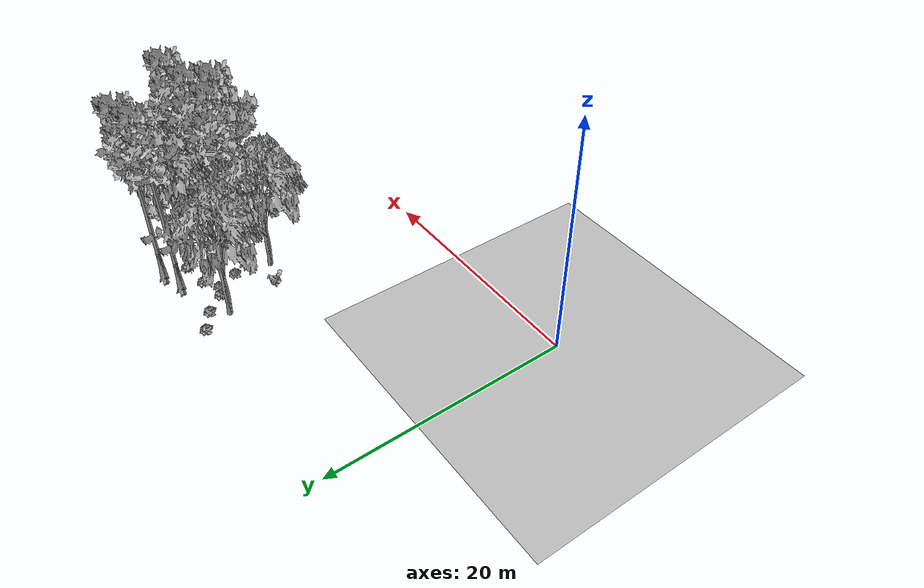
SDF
<sdf version="1.7">
 <world name="default">
  <model name="ground_plane">
   <static>1</static>
   <link name="link">
    <collision name="collision">
     <pose>-50 0 0 0 -0 0</pose>
     <geometry><plane><normal>0 0 1</normal><size>80 80</size></plane></geometry>
     <surface><contact><ode><min_depth>0.01</min_depth><max_vel>0</max_vel></ode></contact></surface>
    </collision>
    <visual name="grass">
     <cast_shadows>0</cast_shadows>
     <geometry>
      <mesh>
       <scale>0.46714285714285714 0.46714285714285714 0.1</scale>
       <uri>file://grass_plane/meshes/grass_plane.dae</uri>
      </mesh>
     </geometry>
    </visual>
   </link>
  </model>
  <model name="Tree 3">
   <static>1</static>
   <pose>17.278344351615864 18.21155146762365 0 1.57079 -0 0</pose>
   <link name="link">
    <collision name="collision">
     <geometry><mesh><scale>3.5 5 3.5</scale><uri>model://tree_2/meshes/tree_2.obj</uri></mesh></geometry>
    </collision>
    <visual name="visual">
     <geometry><mesh><scale>3.5 5 3.5</scale><uri>model://tree_2/meshes/tree_2.obj</uri></mesh></geometry>
    </visual>
   </link>
  </model>
  <model name="Tree 69">
   <static>1</static>
   <pose>22.287735907934852 14.648293195965024 0 1.57079 -0 0</pose>
   <link name="link">
    <collision name="collision">
     <geometry><mesh><scale>3.5 5 3.5</scale><uri>model://tree_9/meshes/tree_9.obj</uri></mesh></geometry>
    </collision>
    <visual name="visual">
     <geometry><mesh><scale>3.5 5 3.5</scale><uri>model://tree_9/meshes/tree_9.obj</uri></mesh></geometry>
    </visual>
   </link>
  </model>
  <model name="Tree 184">
   <static>1</static>
   <pose>22.424108883502882 20.1330501357684 0 1.57079 -0 0</pose>
   <link name="link">
    <collision name="collision">
     <geometry><mesh><scale>3.5 5 3.5</scale><uri>model://tree_9/meshes/tree_9.obj</uri></mesh></geometry>
    </collision>
    <visual name="visual">
     <geometry><mesh><scale>3.5 5 3.5</scale><uri>model://tree_9/meshes/tree_9.obj</uri></mesh></geometry>
    </visual>
   </link>
  </model>
  <model name="Tree 329">
   <static>1</static>
   <pose>27.15754807328058 16.421676882480938 0 1.57079 -0 0</pose>
   <link name="link">
    <collision name="collision">
     <geometry><mesh><scale>3.5 5 3.5</scale><uri>model://tree_2/meshes/tree_2.obj</uri></mesh></geometry>
    </collision>
    <visual name="visual">
     <geometry><mesh><scale>3.5 5 3.5</scale><uri>model://tree_2/meshes/tree_2.obj</uri></mesh></geometry>
    </visual>
   </link>
  </model>
  <model name="Tree 368">
   <static>1</static>
   <pose>28.758802817036596 15.47711259512166 0 1.57079 -0 0</pose>
   <link name="link">
    <collision name="collision">
     <geometry><mesh><scale>3.5 5 3.5</scale><uri>model://tree_9/meshes/tree_9.obj</uri></mesh></geometry>
    </collision>
    <visual name="visual">
     <geometry><mesh><scale>3.5 5 3.5</scale><uri>model://tree_9/meshes/tree_9.obj</uri></mesh></geometry>
    </visual>
   </link>
  </model>
  <model name="Tree 375">
   <static>1</static>
   <pose>24.46002387738629 20.743163513005165 0 1.57079 -0 0</pose>
   <link name="link">
    <collision name="collision">
     <geometry><mesh><scale>3.5 5 3.5</scale><uri>model://tree_9/meshes/tree_9.obj</uri></mesh></geometry>
    </collision>
    <visual name="visual">
     <geometry><mesh><scale>3.5 5 3.5</scale><uri>model://tree_9/meshes/tree_9.obj</uri></mesh></geometry>
    </visual>
   </link>
  </model>
  <model name="Tree 433">
   <static>1</static>
   <pose>25.519750544936386 14.96525599711488 0 1.57079 -0 0</pose>
   <link name="link">
    <collision name="collision">
     <geometry><mesh><scale>3.5 5 3.5</scale><uri>model://tree_9/meshes/tree_9.obj</uri></mesh></geometry>
    </collision>
    <visual name="visual">
     <geometry><mesh><scale>3.5 5 3.5</scale><uri>model://tree_9/meshes/tree_9.obj</uri></mesh></geometry>
    </visual>
   </link>
  </model>
  <model name="Tree 473">
   <static>1</static>
   <pose>20.651107274205437 12.997347162477894 0 1.57079 -0 0</pose>
   <link name="link">
    <collision name="collision">
     <geometry><mesh><scale>3.5 5 3.5</scale><uri>model://tree_2/meshes/tree_2.obj</uri></mesh></geometry>
    </collision>
    <visual name="visual">
     <geometry><mesh><scale>3.5 5 3.5</scale><uri>model://tree_2/meshes/tree_2.obj</uri></mesh></geometry>
    </visual>
   </link>
  </model>
  <model name="Tree 583">
   <static>1</static>
   <pose>24.616898173493453 13.370846381336328 0 1.57079 -0 0</pose>
   <link name="link">
    <collision name="collision">
     <geometry><mesh><scale>3.5 5 3.5</scale><uri>model://tree_9/meshes/tree_9.obj</uri></mesh></geometry>
    </collision>
    <visual name="visual">
     <geometry><mesh><scale>3.5 5 3.5</scale><uri>model://tree_9/meshes/tree_9.obj</uri></mesh></geometry>
    </visual>
   </link>
  </model>
  <model name="Tree 637">
   <static>1</static>
   <pose>26.459898911731628 17.997128815346024 0 1.57079 -0 0</pose>
   <link name="link">
    <collision name="collision">
     <geometry><mesh><scale>3.5 5 3.5</scale><uri>model://tree_2/meshes/tree_2.obj</uri></mesh></geometry>
    </collision>
    <visual name="visual">
     <geometry><mesh><scale>3.5 5 3.5</scale><uri>model://tree_2/meshes/tree_2.obj</uri></mesh></geometry>
    </visual>
   </link>
  </model>
  <model name="Bush 67">
   <static>1</static>
   <pose>18.39492447603554 19.418658274988132 0 1.57079 -0 0</pose>
   <link name="link">
    <collision name="collision">
     <geometry><mesh><scale>2 2 2</scale><uri>model://bush_2/meshes/bush_2.obj</uri></mesh></geometry>
     <surface><contact><collide_without_contact>false</collide_without_contact></contact></surface>
    </collision>
    <visual name="visual">
     <geometry><mesh><scale>2 2 2</scale><uri>model://bush_2/meshes/bush_2.obj</uri></mesh></geometry>
    </visual>
   </link>
  </model>
  <model name="Bush 185">
   <static>1</static>
   <pose>19.64886926949587 17.92255843755104 0 1.57079 -0 0</pose>
   <link name="link">
    <collision name="collision">
     <geometry><mesh><scale>2 2 2</scale><uri>model://bush_2/meshes/bush_2.obj</uri></mesh></geometry>
     <surface><contact><collide_without_contact>false</collide_without_contact></contact></surface>
    </collision>
    <visual name="visual">
     <geometry><mesh><scale>2 2 2</scale><uri>model://bush_2/meshes/bush_2.obj</uri></mesh></geometry>
    </visual>
   </link>
  </model>
  <model name="Bush 198">
   <static>1</static>
   <pose>18.060446419498604 13.910160128442044 0 1.57079 -0 0</pose>
   <link name="link">
    <collision name="collision">
     <geometry><mesh><scale>2 2 2</scale><uri>model://bush_0/meshes/bush_0.obj</uri></mesh></geometry>
     <surface><contact><collide_without_contact>false</collide_without_contact></contact></surface>
    </collision>
    <visual name="visual">
     <geometry><mesh><scale>2 2 2</scale><uri>model://bush_0/meshes/bush_0.obj</uri></mesh></geometry>
    </visual>
   </link>
  </model>
  <model name="Bush 206">
   <static>1</static>
   <pose>25.069691109929472 14.550432272960172 0 1.57079 -0 0</pose>
   <link name="link">
    <collision name="collision">
     <geometry><mesh><scale>2 2 2</scale><uri>model://bush_5/meshes/bush_5.obj</uri></mesh></geometry>
     <surface><contact><collide_without_contact>false</collide_without_contact></contact></surface>
    </collision>
    <visual name="visual">
     <geometry><mesh><scale>2 2 2</scale><uri>model://bush_5/meshes/bush_5.obj</uri></mesh></geometry>
    </visual>
   </link>
  </model>
  <model name="Bush 272">
   <static>1</static>
   <pose>22.87907980881267 16.49971036679463 0 1.57079 -0 0</pose>
   <link name="link">
    <collision name="collision">
     <geometry><mesh><scale>2 2 2</scale><uri>model://bush_4/meshes/bush_4.obj</uri></mesh></geometry>
     <surface><contact><collide_without_contact>false</collide_without_contact></contact></surface>
    </collision>
    <visual name="visual">
     <geometry><mesh><scale>2 2 2</scale><uri>model://bush_4/meshes/bush_4.obj</uri></mesh></geometry>
    </visual>
   </link>
  </model>
  <model name="Bush 295">
   <static>1</static>
   <pose>24.253447205629392 18.793634697796826 0 1.57079 -0 0</pose>
   <link name="link">
    <collision name="collision">
     <geometry><mesh><scale>2 2 2</scale><uri>model://bush_2/meshes/bush_2.obj</uri></mesh></geometry>
     <surface><contact><collide_without_contact>false</collide_without_contact></contact></surface>
    </collision>
    <visual name="visual">
     <geometry><mesh><scale>2 2 2</scale><uri>model://bush_2/meshes/bush_2.obj</uri></mesh></geometry>
    </visual>
   </link>
  </model>
  <model name="Bush 324">
   <static>1</static>
   <pose>28.351117993910847 12.536593510453393 0 1.57079 -0 0</pose>
   <link name="link">
    <collision name="collision">
     <geometry><mesh><scale>2 2 2</scale><uri>model://bush_4/meshes/bush_4.obj</uri></mesh></geometry>
     <surface><contact><collide_without_contact>false</collide_without_contact></contact></surface>
    </collision>
    <visual name="visual">
     <geometry><mesh><scale>2 2 2</scale><uri>model://bush_4/meshes/bush_4.obj</uri></mesh></geometry>
    </visual>
   </link>
  </model>
  <model name="Bush 357">
   <static>1</static>
   <pose>16.73610459327655 20.458193879914646 0 1.57079 -0 0</pose>
   <link name="link">
    <collision name="collision">
     <geometry><mesh><scale>2 2 2</scale><uri>model://bush_2/meshes/bush_2.obj</uri></mesh></geometry>
     <surface><contact><collide_without_contact>false</collide_without_contact></contact></surface>
    </collision>
    <visual name="visual">
     <geometry><mesh><scale>2 2 2</scale><uri>model://bush_2/meshes/bush_2.obj</uri></mesh></geometry>
    </visual>
   </link>
  </model>
  <model name="Bush 463">
   <static>1</static>
   <pose>26.683994100539707 9.608491345786597 0 1.57079 -0 0</pose>
   <link name="link">
    <collision name="collision">
     <geometry><mesh><scale>2 2 2</scale><uri>model://bush_2/meshes/bush_2.obj</uri></mesh></geometry>
     <surface><contact><collide_without_contact>false</collide_without_contact></contact></surface>
    </collision>
    <visual name="visual">
     <geometry><mesh><scale>2 2 2</scale><uri>model://bush_2/meshes/bush_2.obj</uri></mesh></geometry>
    </visual>
   </link>
  </model>
  <model name="Bush 491">
   <static>1</static>
   <pose>21.85537533507965 18.415237458032763 0 1.57079 -0 0</pose>
   <link name="link">
    <collision name="collision">
     <geometry><mesh><scale>2 2 2</scale><uri>model://bush_2/meshes/bush_2.obj</uri></mesh></geometry>
     <surface><contact><collide_without_contact>false</collide_without_contact></contact></surface>
    </collision>
    <visual name="visual">
     <geometry><mesh><scale>2 2 2</scale><uri>model://bush_2/meshes/bush_2.obj</uri></mesh></geometry>
    </visual>
   </link>
  </model>
  <model name="Bush 493">
   <static>1</static>
   <pose>26.9925469394976 17.732673431013275 0 1.57079 -0 0</pose>
   <link name="link">
    <collision name="collision">
     <geometry><mesh><scale>2 2 2</scale><uri>model://bush_1/meshes/bush_1.obj</uri></mesh></geometry>
     <surface><contact><collide_without_contact>false</collide_without_contact></contact></surface>
    </collision>
    <visual name="visual">
     <geometry><mesh><scale>2 2 2</scale><uri>model://bush_1/meshes/bush_1.obj</uri></mesh></geometry>
    </visual>
   </link>
  </model>
  <model name="Bush 520">
   <static>1</static>
   <pose>20.585808080594802 17.593045049266678 0 1.57079 -0 0</pose>
   <link name="link">
    <collision name="collision">
     <geometry><mesh><scale>2 2 2</scale><uri>model://bush_2/meshes/bush_2.obj</uri></mesh></geometry>
     <surface><contact><collide_without_contact>false</collide_without_contact></contact></surface>
    </collision>
    <visual name="visual">
     <geometry><mesh><scale>2 2 2</scale><uri>model://bush_2/meshes/bush_2.obj</uri></mesh></geometry>
    </visual>
   </link>
  </model>
  <model name="Bush 623">
   <static>1</static>
   <pose>21.293580466383546 15.890933017626836 0 1.57079 -0 0</pose>
   <link name="link">
    <collision name="collision">
     <geometry><mesh><scale>2 2 2</scale><uri>model://bush_2/meshes/bush_2.obj</uri></mesh></geometry>
     <surface><contact><collide_without_contact>false</collide_without_contact></contact></surface>
    </collision>
    <visual name="visual">
     <geometry><mesh><scale>2 2 2</scale><uri>model://bush_2/meshes/bush_2.obj</uri></mesh></geometry>
    </visual>
   </link>
  </model>
 </world>
</sdf>
